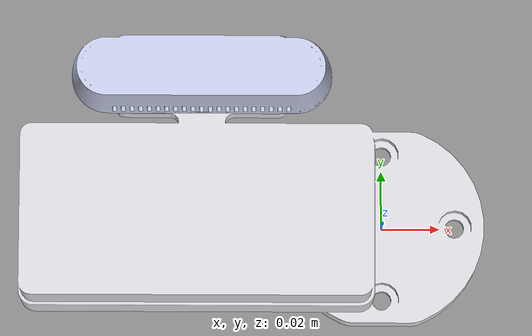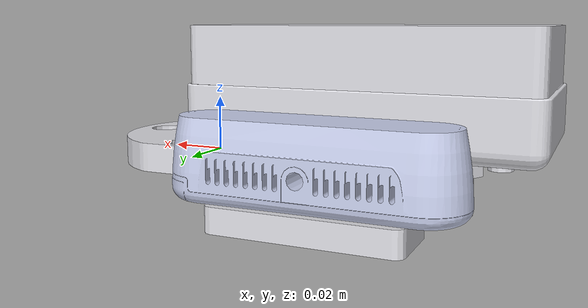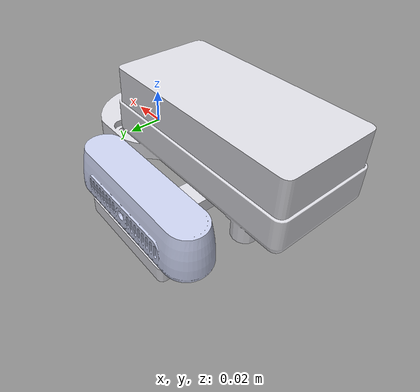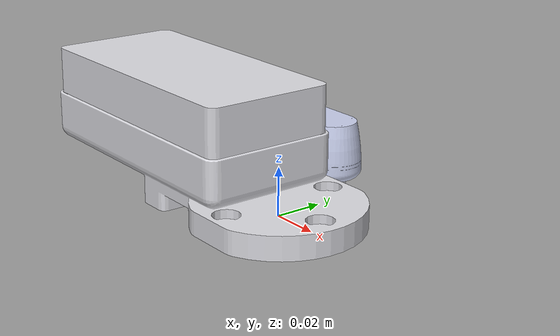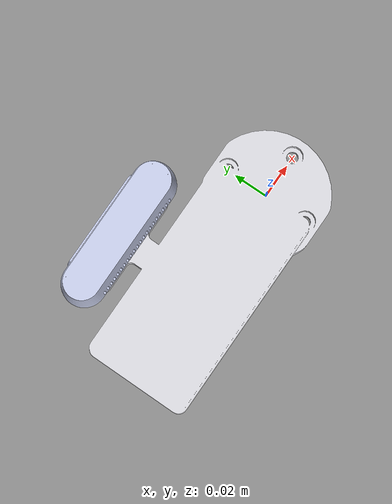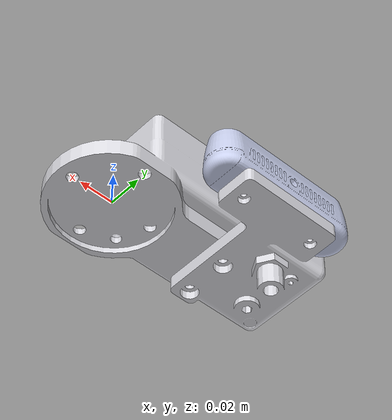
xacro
<?xml version="1.0" encoding="utf-8"?>
<robot name="grip_schmalz" xmlns:xacro="http://www.ros.org/wiki/xacro">

    <xacro:include filename="$(find grip_schmalz)/urdf/grip_schmalz.urdf.xacro"/>

    <link name="world"/>
    <xacro:grip_schmalz name="grip_schmalz" parent="world">
        <origin xyz="0 0 0" rpy="0 0 0" />
    </xacro:grip_schmalz>

</robot>

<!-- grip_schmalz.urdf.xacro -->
<robot
  name="grip_schmalz" xmlns:xacro="http://ros.org/robotwiki/xacro">
  <xacro:macro name="grip_schmalz" params="name parent *origin">

    <joint name="${name}_joint" type="fixed">
      <parent link="${parent}" />
      <child link="${name}_base_link" />
      <xacro:insert_block name="origin" />
    </joint>

    <link
      name="${name}_base_link">
      <inertial>
        <origin
          xyz="-0.051892 0.004452 0.016773"
          rpy="0 0 0" />
        <mass
          value="0.41884" />
        <inertia
          ixx="0.00013691"
          ixy="1.0072E-06"
          ixz="-2.5401E-06"
          iyy="0.00041805"
          iyz="6.2031E-07"
          izz="0.00053506" />
      </inertial>
      <visual>
        <origin
          xyz="0 0 0"
          rpy="0 0 0" />
        <geometry>
          <mesh
            filename="package://grip_schmalz/meshes/grip_base_link.STL" />
        </geometry>
        <material
          name="">
          <color
            rgba="0.86667 0.86667 0.8902 1" />
        </material>
      </visual>
      <collision>
        <origin
          xyz="0 0 0"
          rpy="0 0 0" />
        <geometry>
          <mesh
            filename="package://grip_schmalz/meshes/grip_base_link.STL" />
        </geometry>
      </collision>
    </link>
    <link
      name="${name}_camera">
      <inertial>
        <origin
          xyz="-0.00024739 6.0869E-05 -0.013049"
          rpy="0 0 0" />
        <mass
          value="0.04476" />
        <inertia
          ixx="3.945E-06"
          ixy="-2.7882E-09"
          ixz="-2.4465E-07"
          iyy="2.7365E-05"
          iyz="1.3284E-09"
          izz="2.728E-05" />
      </inertial>
      <visual>
        <origin
          xyz="0 0 0"
          rpy="0 0 0" />
        <geometry>
          <mesh
            filename="package://grip_schmalz/meshes/camera.STL" />
        </geometry>
        <material
          name="">
          <color
            rgba="0.79216 0.81961 0.93333 1" />
        </material>
      </visual>
      <collision>
        <origin
          xyz="0 0 0"
          rpy="0 0 0" />
        <geometry>
          <mesh
            filename="package://grip_schmalz/meshes/camera.STL" />
        </geometry>
      </collision>
    </link>
    <joint
      name="${name}_camera"
      type="fixed">
      <origin
        xyz="-0.062 0.053 0.0215"
        rpy="0 0 0" />
      <parent
        link="${name}_base_link" />
      <child
        link="${name}_camera" />
      <axis
        xyz="0 0 0" />
    </joint>
  </xacro:macro>
</robot>
